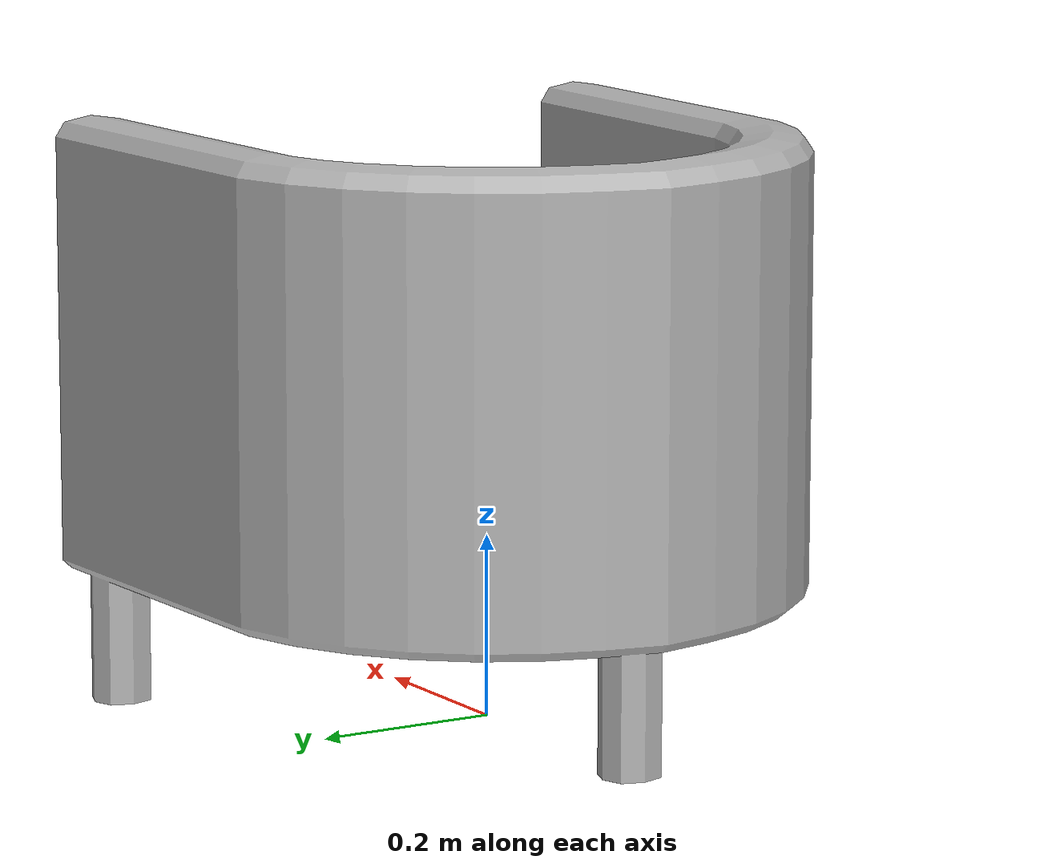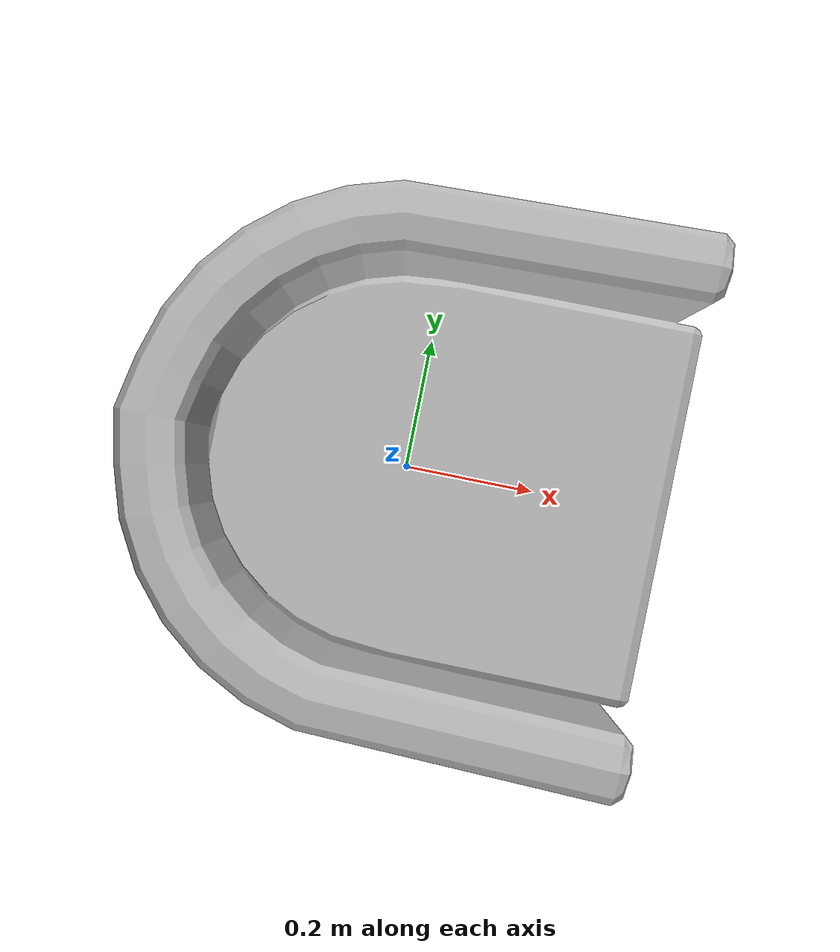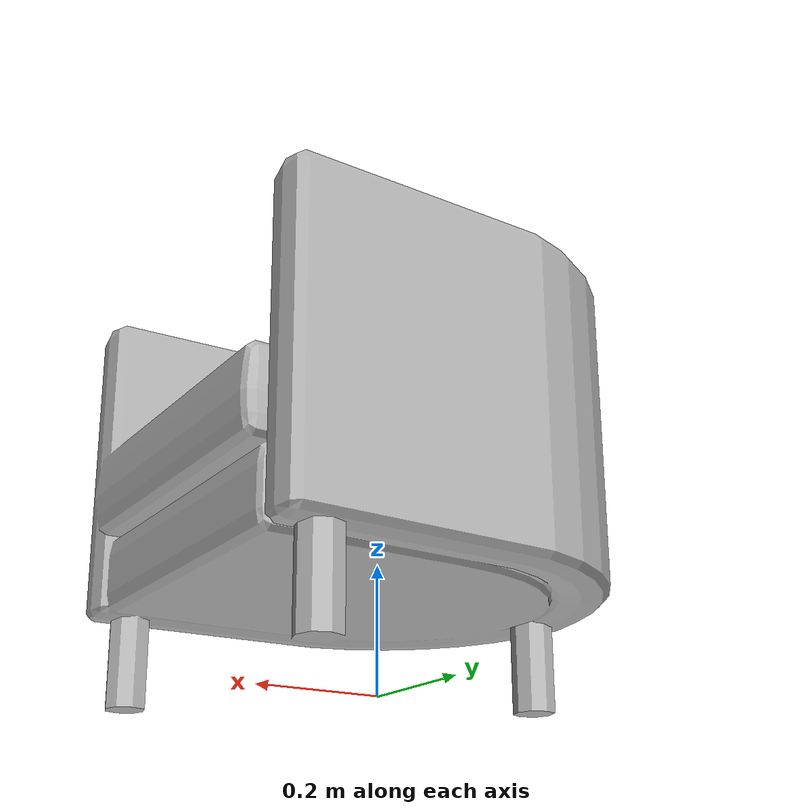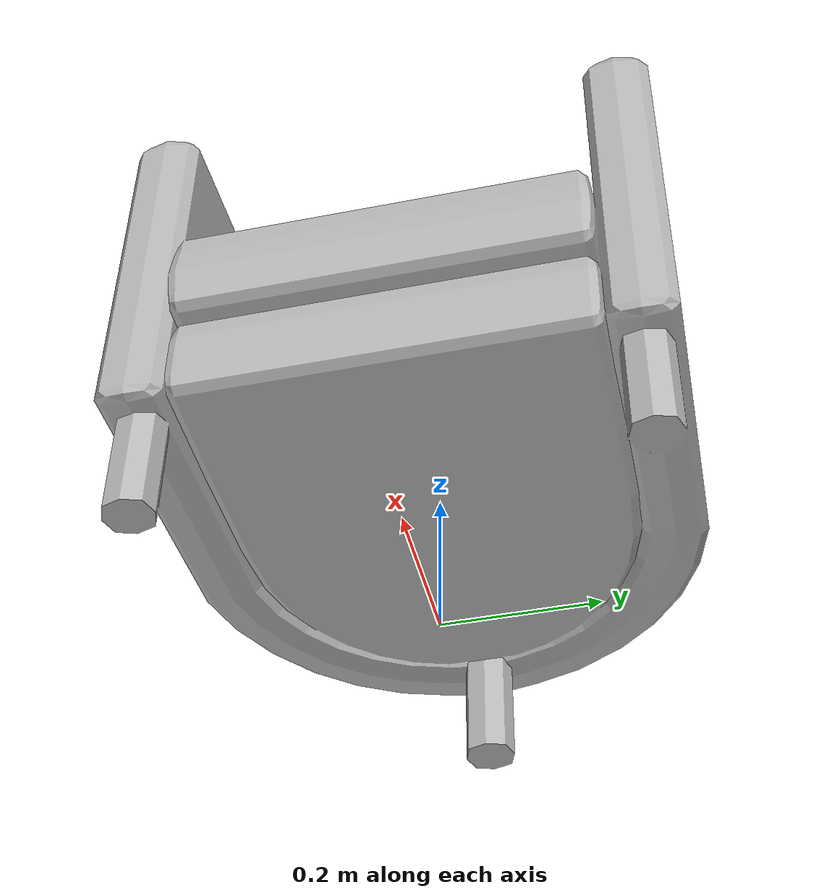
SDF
<?xml version='1.0'?>
<sdf version='1.4'>
  <model name='69'>
    <pose>0 0 0 0 0 0</pose>
    <static>true</static>
    <link name='link'>
      <collision name='collision'>
        <pose>0 0 0 0 0 0</pose>
        <geometry>
          <box>
            <size>0.72 0.7 2</size>
          </box>
        </geometry>
      </collision>
      <visual name='visual'>
        <pose>0 0 0 0 0 0</pose>
        <geometry>
          <mesh><uri>model://69/69.dae</uri></mesh>
        </geometry>
      </visual>
    </link>
  </model>
</sdf>
